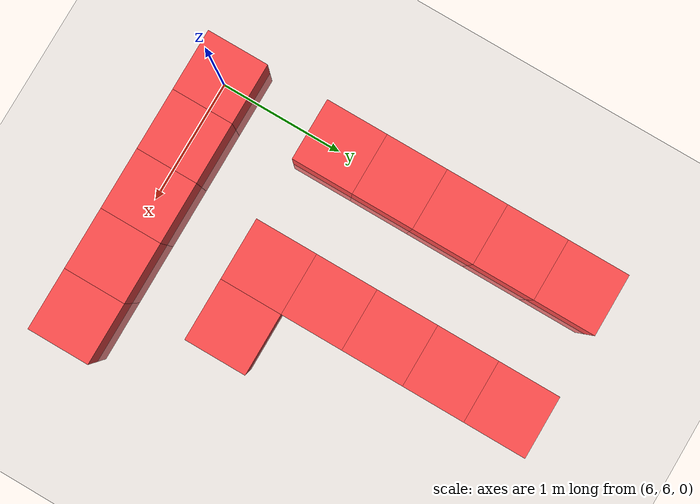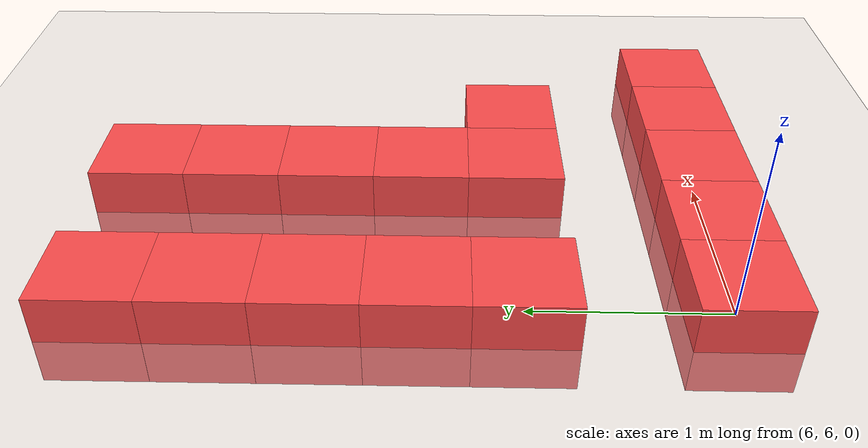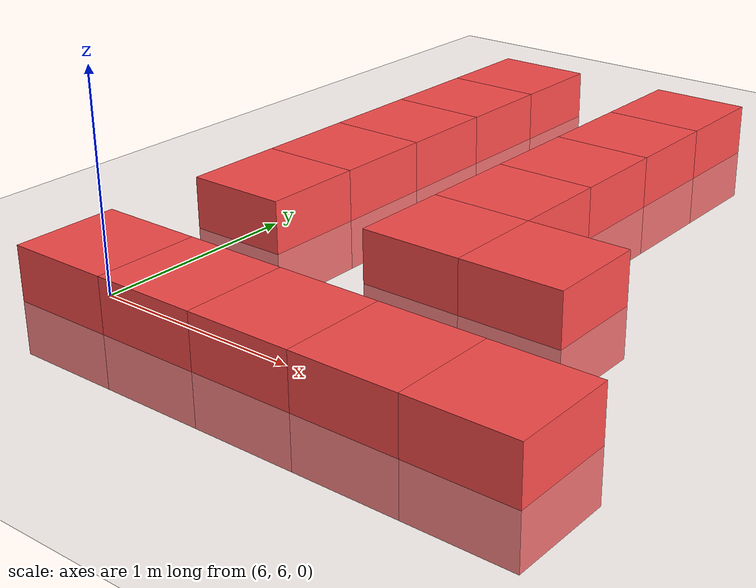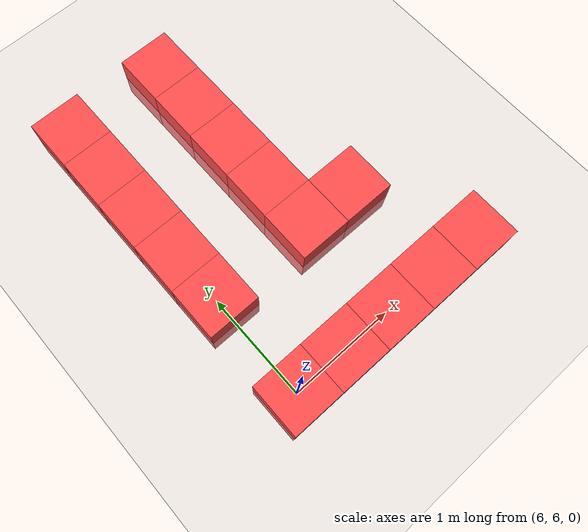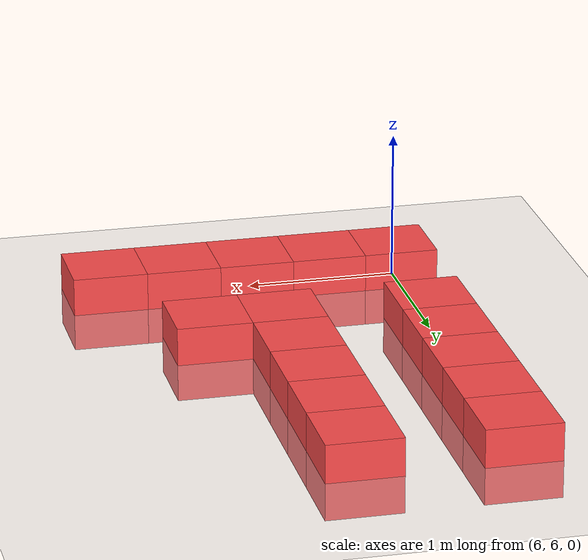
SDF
<sdf version="1.6">
 <world name="default">
  <model name="ground_plane">
   <static>1</static>
   <link name="link">
    <collision name="collision">
     <geometry><plane><normal>0 0 1</normal><size>100 100</size></plane></geometry>
     <surface><friction><ode><mu>100</mu><mu2>50</mu2></ode></friction></surface>
    </collision>
    <visual name="visual">
     <cast_shadows>0</cast_shadows>
     <geometry><plane><normal>0 0 1</normal><size>100 100</size></plane></geometry>
     <material>
      <script><uri>file://media/materials/scripts/gazebo.material</uri><name>Gazebo/Grey</name></script>
     </material>
    </visual>
   </link>
  </model>
  <model name="Box_Red_312">
   <link name="link_0">
    <inertial>
     <mass>1</mass>
     <inertia>
      <ixx>0.166667</ixx>
      <ixy>0</ixy>
      <ixz>0</ixz>
      <iyy>0.166667</iyy>
      <iyz>0</iyz>
      <izz>0.166667</izz>
     </inertia>
    </inertial>
    <visual name="visual">
     <geometry><box><size>0.5 0.5 0.5</size></box></geometry>
     <material>
      <lighting>1</lighting>
      <script><uri>file://media/materials/scripts/gazebo.material</uri><name>Gazebo/Grey</name></script>
      <ambient>1 0.3 0.3 1</ambient>
      <diffuse>0.7 0.7 0.7 1</diffuse>
      <specular>0.01 0.01 0.01 1</specular>
      <emissive>0 0 0 1</emissive>
      <shader type="vertex"><normal_map>__default__</normal_map></shader>
     </material>
    </visual>
    <collision name="collision">
     <geometry><box><size>0.5 0.5 0.5</size></box></geometry>
     <surface>
      <friction>
       <ode><mu>1</mu><mu2>1</mu2><fdir1>0 0 0</fdir1><slip1>0</slip1><slip2>0</slip2></ode>
       <torsional>
        <coefficient>1</coefficient>
        <patch_radius>0</patch_radius>
        <surface_radius>0</surface_radius>
        <use_patch_radius>1</use_patch_radius>
        <ode><slip>0</slip></ode>
       </torsional>
      </friction>
      <bounce><restitution_coefficient>0</restitution_coefficient><threshold>1e+06</threshold></bounce>
      <contact>
       <collide_without_contact>0</collide_without_contact>
       <collide_without_contact_bitmask>1</collide_without_contact_bitmask>
       <collide_bitmask>1</collide_bitmask>
       <ode>
        <soft_cfm>0</soft_cfm>
        <soft_erp>0.2</soft_erp>
        <kp>1e+13</kp>
        <kd>1</kd>
        <max_vel>0.01</max_vel>
        <min_depth>0</min_depth>
       </ode>
       <bullet>
        <split_impulse>1</split_impulse>
        <split_impulse_penetration_threshold>-0.01</split_impulse_penetration_threshold>
        <soft_cfm>0</soft_cfm>
        <soft_erp>0.2</soft_erp>
        <kp>1e+13</kp>
        <kd>1</kd>
       </bullet>
      </contact>
     </surface>
    </collision>
   </link>
   <static>0</static>
   <pose>6.000 6.000 0.000 0 0 0</pose>
  </model>
  <model name="Box_Red_314">
   <link name="link_0">
    <inertial>
     <mass>1</mass>
     <inertia>
      <ixx>0.166667</ixx>
      <ixy>0</ixy>
      <ixz>0</ixz>
      <iyy>0.166667</iyy>
      <iyz>0</iyz>
      <izz>0.166667</izz>
     </inertia>
    </inertial>
    <visual name="visual">
     <geometry><box><size>0.5 0.5 0.5</size></box></geometry>
     <material>
      <lighting>1</lighting>
      <script><uri>file://media/materials/scripts/gazebo.material</uri><name>Gazebo/Grey</name></script>
      <ambient>1 0.3 0.3 1</ambient>
      <diffuse>0.7 0.7 0.7 1</diffuse>
      <specular>0.01 0.01 0.01 1</specular>
      <emissive>0 0 0 1</emissive>
      <shader type="vertex"><normal_map>__default__</normal_map></shader>
     </material>
    </visual>
    <collision name="collision">
     <geometry><box><size>0.5 0.5 0.5</size></box></geometry>
     <surface>
      <friction>
       <ode><mu>1</mu><mu2>1</mu2><fdir1>0 0 0</fdir1><slip1>0</slip1><slip2>0</slip2></ode>
       <torsional>
        <coefficient>1</coefficient>
        <patch_radius>0</patch_radius>
        <surface_radius>0</surface_radius>
        <use_patch_radius>1</use_patch_radius>
        <ode><slip>0</slip></ode>
       </torsional>
      </friction>
      <bounce><restitution_coefficient>0</restitution_coefficient><threshold>1e+06</threshold></bounce>
      <contact>
       <collide_without_contact>0</collide_without_contact>
       <collide_without_contact_bitmask>1</collide_without_contact_bitmask>
       <collide_bitmask>1</collide_bitmask>
       <ode>
        <soft_cfm>0</soft_cfm>
        <soft_erp>0.2</soft_erp>
        <kp>1e+13</kp>
        <kd>1</kd>
        <max_vel>0.01</max_vel>
        <min_depth>0</min_depth>
       </ode>
       <bullet>
        <split_impulse>1</split_impulse>
        <split_impulse_penetration_threshold>-0.01</split_impulse_penetration_threshold>
        <soft_cfm>0</soft_cfm>
        <soft_erp>0.2</soft_erp>
        <kp>1e+13</kp>
        <kd>1</kd>
       </bullet>
      </contact>
     </surface>
    </collision>
   </link>
   <static>0</static>
   <pose>6.000 7.000 0.000 0 0 0</pose>
  </model>
  <model name="Box_Red_315">
   <link name="link_0">
    <inertial>
     <mass>1</mass>
     <inertia>
      <ixx>0.166667</ixx>
      <ixy>0</ixy>
      <ixz>0</ixz>
      <iyy>0.166667</iyy>
      <iyz>0</iyz>
      <izz>0.166667</izz>
     </inertia>
    </inertial>
    <visual name="visual">
     <geometry><box><size>0.5 0.5 0.5</size></box></geometry>
     <material>
      <lighting>1</lighting>
      <script><uri>file://media/materials/scripts/gazebo.material</uri><name>Gazebo/Grey</name></script>
      <ambient>1 0.3 0.3 1</ambient>
      <diffuse>0.7 0.7 0.7 1</diffuse>
      <specular>0.01 0.01 0.01 1</specular>
      <emissive>0 0 0 1</emissive>
      <shader type="vertex"><normal_map>__default__</normal_map></shader>
     </material>
    </visual>
    <collision name="collision">
     <geometry><box><size>0.5 0.5 0.5</size></box></geometry>
     <surface>
      <friction>
       <ode><mu>1</mu><mu2>1</mu2><fdir1>0 0 0</fdir1><slip1>0</slip1><slip2>0</slip2></ode>
       <torsional>
        <coefficient>1</coefficient>
        <patch_radius>0</patch_radius>
        <surface_radius>0</surface_radius>
        <use_patch_radius>1</use_patch_radius>
        <ode><slip>0</slip></ode>
       </torsional>
      </friction>
      <bounce><restitution_coefficient>0</restitution_coefficient><threshold>1e+06</threshold></bounce>
      <contact>
       <collide_without_contact>0</collide_without_contact>
       <collide_without_contact_bitmask>1</collide_without_contact_bitmask>
       <collide_bitmask>1</collide_bitmask>
       <ode>
        <soft_cfm>0</soft_cfm>
        <soft_erp>0.2</soft_erp>
        <kp>1e+13</kp>
        <kd>1</kd>
        <max_vel>0.01</max_vel>
        <min_depth>0</min_depth>
       </ode>
       <bullet>
        <split_impulse>1</split_impulse>
        <split_impulse_penetration_threshold>-0.01</split_impulse_penetration_threshold>
        <soft_cfm>0</soft_cfm>
        <soft_erp>0.2</soft_erp>
        <kp>1e+13</kp>
        <kd>1</kd>
       </bullet>
      </contact>
     </surface>
    </collision>
   </link>
   <static>0</static>
   <pose>6.000 7.500 0.000 0 0 0</pose>
  </model>
  <model name="Box_Red_316">
   <link name="link_0">
    <inertial>
     <mass>1</mass>
     <inertia>
      <ixx>0.166667</ixx>
      <ixy>0</ixy>
      <ixz>0</ixz>
      <iyy>0.166667</iyy>
      <iyz>0</iyz>
      <izz>0.166667</izz>
     </inertia>
    </inertial>
    <visual name="visual">
     <geometry><box><size>0.5 0.5 0.5</size></box></geometry>
     <material>
      <lighting>1</lighting>
      <script><uri>file://media/materials/scripts/gazebo.material</uri><name>Gazebo/Grey</name></script>
      <ambient>1 0.3 0.3 1</ambient>
      <diffuse>0.7 0.7 0.7 1</diffuse>
      <specular>0.01 0.01 0.01 1</specular>
      <emissive>0 0 0 1</emissive>
      <shader type="vertex"><normal_map>__default__</normal_map></shader>
     </material>
    </visual>
    <collision name="collision">
     <geometry><box><size>0.5 0.5 0.5</size></box></geometry>
     <surface>
      <friction>
       <ode><mu>1</mu><mu2>1</mu2><fdir1>0 0 0</fdir1><slip1>0</slip1><slip2>0</slip2></ode>
       <torsional>
        <coefficient>1</coefficient>
        <patch_radius>0</patch_radius>
        <surface_radius>0</surface_radius>
        <use_patch_radius>1</use_patch_radius>
        <ode><slip>0</slip></ode>
       </torsional>
      </friction>
      <bounce><restitution_coefficient>0</restitution_coefficient><threshold>1e+06</threshold></bounce>
      <contact>
       <collide_without_contact>0</collide_without_contact>
       <collide_without_contact_bitmask>1</collide_without_contact_bitmask>
       <collide_bitmask>1</collide_bitmask>
       <ode>
        <soft_cfm>0</soft_cfm>
        <soft_erp>0.2</soft_erp>
        <kp>1e+13</kp>
        <kd>1</kd>
        <max_vel>0.01</max_vel>
        <min_depth>0</min_depth>
       </ode>
       <bullet>
        <split_impulse>1</split_impulse>
        <split_impulse_penetration_threshold>-0.01</split_impulse_penetration_threshold>
        <soft_cfm>0</soft_cfm>
        <soft_erp>0.2</soft_erp>
        <kp>1e+13</kp>
        <kd>1</kd>
       </bullet>
      </contact>
     </surface>
    </collision>
   </link>
   <static>0</static>
   <pose>6.000 8.000 0.000 0 0 0</pose>
  </model>
  <model name="Box_Red_317">
   <link name="link_0">
    <inertial>
     <mass>1</mass>
     <inertia>
      <ixx>0.166667</ixx>
      <ixy>0</ixy>
      <ixz>0</ixz>
      <iyy>0.166667</iyy>
      <iyz>0</iyz>
      <izz>0.166667</izz>
     </inertia>
    </inertial>
    <visual name="visual">
     <geometry><box><size>0.5 0.5 0.5</size></box></geometry>
     <material>
      <lighting>1</lighting>
      <script><uri>file://media/materials/scripts/gazebo.material</uri><name>Gazebo/Grey</name></script>
      <ambient>1 0.3 0.3 1</ambient>
      <diffuse>0.7 0.7 0.7 1</diffuse>
      <specular>0.01 0.01 0.01 1</specular>
      <emissive>0 0 0 1</emissive>
      <shader type="vertex"><normal_map>__default__</normal_map></shader>
     </material>
    </visual>
    <collision name="collision">
     <geometry><box><size>0.5 0.5 0.5</size></box></geometry>
     <surface>
      <friction>
       <ode><mu>1</mu><mu2>1</mu2><fdir1>0 0 0</fdir1><slip1>0</slip1><slip2>0</slip2></ode>
       <torsional>
        <coefficient>1</coefficient>
        <patch_radius>0</patch_radius>
        <surface_radius>0</surface_radius>
        <use_patch_radius>1</use_patch_radius>
        <ode><slip>0</slip></ode>
       </torsional>
      </friction>
      <bounce><restitution_coefficient>0</restitution_coefficient><threshold>1e+06</threshold></bounce>
      <contact>
       <collide_without_contact>0</collide_without_contact>
       <collide_without_contact_bitmask>1</collide_without_contact_bitmask>
       <collide_bitmask>1</collide_bitmask>
       <ode>
        <soft_cfm>0</soft_cfm>
        <soft_erp>0.2</soft_erp>
        <kp>1e+13</kp>
        <kd>1</kd>
        <max_vel>0.01</max_vel>
        <min_depth>0</min_depth>
       </ode>
       <bullet>
        <split_impulse>1</split_impulse>
        <split_impulse_penetration_threshold>-0.01</split_impulse_penetration_threshold>
        <soft_cfm>0</soft_cfm>
        <soft_erp>0.2</soft_erp>
        <kp>1e+13</kp>
        <kd>1</kd>
       </bullet>
      </contact>
     </surface>
    </collision>
   </link>
   <static>0</static>
   <pose>6.000 8.500 0.000 0 0 0</pose>
  </model>
  <model name="Box_Red_318">
   <link name="link_0">
    <inertial>
     <mass>1</mass>
     <inertia>
      <ixx>0.166667</ixx>
      <ixy>0</ixy>
      <ixz>0</ixz>
      <iyy>0.166667</iyy>
      <iyz>0</iyz>
      <izz>0.166667</izz>
     </inertia>
    </inertial>
    <visual name="visual">
     <geometry><box><size>0.5 0.5 0.5</size></box></geometry>
     <material>
      <lighting>1</lighting>
      <script><uri>file://media/materials/scripts/gazebo.material</uri><name>Gazebo/Grey</name></script>
      <ambient>1 0.3 0.3 1</ambient>
      <diffuse>0.7 0.7 0.7 1</diffuse>
      <specular>0.01 0.01 0.01 1</specular>
      <emissive>0 0 0 1</emissive>
      <shader type="vertex"><normal_map>__default__</normal_map></shader>
     </material>
    </visual>
    <collision name="collision">
     <geometry><box><size>0.5 0.5 0.5</size></box></geometry>
     <surface>
      <friction>
       <ode><mu>1</mu><mu2>1</mu2><fdir1>0 0 0</fdir1><slip1>0</slip1><slip2>0</slip2></ode>
       <torsional>
        <coefficient>1</coefficient>
        <patch_radius>0</patch_radius>
        <surface_radius>0</surface_radius>
        <use_patch_radius>1</use_patch_radius>
        <ode><slip>0</slip></ode>
       </torsional>
      </friction>
      <bounce><restitution_coefficient>0</restitution_coefficient><threshold>1e+06</threshold></bounce>
      <contact>
       <collide_without_contact>0</collide_without_contact>
       <collide_without_contact_bitmask>1</collide_without_contact_bitmask>
       <collide_bitmask>1</collide_bitmask>
       <ode>
        <soft_cfm>0</soft_cfm>
        <soft_erp>0.2</soft_erp>
        <kp>1e+13</kp>
        <kd>1</kd>
        <max_vel>0.01</max_vel>
        <min_depth>0</min_depth>
       </ode>
       <bullet>
        <split_impulse>1</split_impulse>
        <split_impulse_penetration_threshold>-0.01</split_impulse_penetration_threshold>
        <soft_cfm>0</soft_cfm>
        <soft_erp>0.2</soft_erp>
        <kp>1e+13</kp>
        <kd>1</kd>
       </bullet>
      </contact>
     </surface>
    </collision>
   </link>
   <static>0</static>
   <pose>6.000 9.000 0.000 0 0 0</pose>
  </model>
  <model name="Box_Red_337">
   <link name="link_0">
    <inertial>
     <mass>1</mass>
     <inertia>
      <ixx>0.166667</ixx>
      <ixy>0</ixy>
      <ixz>0</ixz>
      <iyy>0.166667</iyy>
      <iyz>0</iyz>
      <izz>0.166667</izz>
     </inertia>
    </inertial>
    <visual name="visual">
     <geometry><box><size>0.5 0.5 0.5</size></box></geometry>
     <material>
      <lighting>1</lighting>
      <script><uri>file://media/materials/scripts/gazebo.material</uri><name>Gazebo/Grey</name></script>
      <ambient>1 0.3 0.3 1</ambient>
      <diffuse>0.7 0.7 0.7 1</diffuse>
      <specular>0.01 0.01 0.01 1</specular>
      <emissive>0 0 0 1</emissive>
      <shader type="vertex"><normal_map>__default__</normal_map></shader>
     </material>
    </visual>
    <collision name="collision">
     <geometry><box><size>0.5 0.5 0.5</size></box></geometry>
     <surface>
      <friction>
       <ode><mu>1</mu><mu2>1</mu2><fdir1>0 0 0</fdir1><slip1>0</slip1><slip2>0</slip2></ode>
       <torsional>
        <coefficient>1</coefficient>
        <patch_radius>0</patch_radius>
        <surface_radius>0</surface_radius>
        <use_patch_radius>1</use_patch_radius>
        <ode><slip>0</slip></ode>
       </torsional>
      </friction>
      <bounce><restitution_coefficient>0</restitution_coefficient><threshold>1e+06</threshold></bounce>
      <contact>
       <collide_without_contact>0</collide_without_contact>
       <collide_without_contact_bitmask>1</collide_without_contact_bitmask>
       <collide_bitmask>1</collide_bitmask>
       <ode>
        <soft_cfm>0</soft_cfm>
        <soft_erp>0.2</soft_erp>
        <kp>1e+13</kp>
        <kd>1</kd>
        <max_vel>0.01</max_vel>
        <min_depth>0</min_depth>
       </ode>
       <bullet>
        <split_impulse>1</split_impulse>
        <split_impulse_penetration_threshold>-0.01</split_impulse_penetration_threshold>
        <soft_cfm>0</soft_cfm>
        <soft_erp>0.2</soft_erp>
        <kp>1e+13</kp>
        <kd>1</kd>
       </bullet>
      </contact>
     </surface>
    </collision>
   </link>
   <static>0</static>
   <pose>6.500 6.000 0.000 0 0 0</pose>
  </model>
  <model name="Box_Red_362">
   <link name="link_0">
    <inertial>
     <mass>1</mass>
     <inertia>
      <ixx>0.166667</ixx>
      <ixy>0</ixy>
      <ixz>0</ixz>
      <iyy>0.166667</iyy>
      <iyz>0</iyz>
      <izz>0.166667</izz>
     </inertia>
    </inertial>
    <visual name="visual">
     <geometry><box><size>0.5 0.5 0.5</size></box></geometry>
     <material>
      <lighting>1</lighting>
      <script><uri>file://media/materials/scripts/gazebo.material</uri><name>Gazebo/Grey</name></script>
      <ambient>1 0.3 0.3 1</ambient>
      <diffuse>0.7 0.7 0.7 1</diffuse>
      <specular>0.01 0.01 0.01 1</specular>
      <emissive>0 0 0 1</emissive>
      <shader type="vertex"><normal_map>__default__</normal_map></shader>
     </material>
    </visual>
    <collision name="collision">
     <geometry><box><size>0.5 0.5 0.5</size></box></geometry>
     <surface>
      <friction>
       <ode><mu>1</mu><mu2>1</mu2><fdir1>0 0 0</fdir1><slip1>0</slip1><slip2>0</slip2></ode>
       <torsional>
        <coefficient>1</coefficient>
        <patch_radius>0</patch_radius>
        <surface_radius>0</surface_radius>
        <use_patch_radius>1</use_patch_radius>
        <ode><slip>0</slip></ode>
       </torsional>
      </friction>
      <bounce><restitution_coefficient>0</restitution_coefficient><threshold>1e+06</threshold></bounce>
      <contact>
       <collide_without_contact>0</collide_without_contact>
       <collide_without_contact_bitmask>1</collide_without_contact_bitmask>
       <collide_bitmask>1</collide_bitmask>
       <ode>
        <soft_cfm>0</soft_cfm>
        <soft_erp>0.2</soft_erp>
        <kp>1e+13</kp>
        <kd>1</kd>
        <max_vel>0.01</max_vel>
        <min_depth>0</min_depth>
       </ode>
       <bullet>
        <split_impulse>1</split_impulse>
        <split_impulse_penetration_threshold>-0.01</split_impulse_penetration_threshold>
        <soft_cfm>0</soft_cfm>
        <soft_erp>0.2</soft_erp>
        <kp>1e+13</kp>
        <kd>1</kd>
       </bullet>
      </contact>
     </surface>
    </collision>
   </link>
   <static>0</static>
   <pose>7.000 6.000 0.000 0 0 0</pose>
  </model>
  <model name="Box_Red_364">
   <link name="link_0">
    <inertial>
     <mass>1</mass>
     <inertia>
      <ixx>0.166667</ixx>
      <ixy>0</ixy>
      <ixz>0</ixz>
      <iyy>0.166667</iyy>
      <iyz>0</iyz>
      <izz>0.166667</izz>
     </inertia>
    </inertial>
    <visual name="visual">
     <geometry><box><size>0.5 0.5 0.5</size></box></geometry>
     <material>
      <lighting>1</lighting>
      <script><uri>file://media/materials/scripts/gazebo.material</uri><name>Gazebo/Grey</name></script>
      <ambient>1 0.3 0.3 1</ambient>
      <diffuse>0.7 0.7 0.7 1</diffuse>
      <specular>0.01 0.01 0.01 1</specular>
      <emissive>0 0 0 1</emissive>
      <shader type="vertex"><normal_map>__default__</normal_map></shader>
     </material>
    </visual>
    <collision name="collision">
     <geometry><box><size>0.5 0.5 0.5</size></box></geometry>
     <surface>
      <friction>
       <ode><mu>1</mu><mu2>1</mu2><fdir1>0 0 0</fdir1><slip1>0</slip1><slip2>0</slip2></ode>
       <torsional>
        <coefficient>1</coefficient>
        <patch_radius>0</patch_radius>
        <surface_radius>0</surface_radius>
        <use_patch_radius>1</use_patch_radius>
        <ode><slip>0</slip></ode>
       </torsional>
      </friction>
      <bounce><restitution_coefficient>0</restitution_coefficient><threshold>1e+06</threshold></bounce>
      <contact>
       <collide_without_contact>0</collide_without_contact>
       <collide_without_contact_bitmask>1</collide_without_contact_bitmask>
       <collide_bitmask>1</collide_bitmask>
       <ode>
        <soft_cfm>0</soft_cfm>
        <soft_erp>0.2</soft_erp>
        <kp>1e+13</kp>
        <kd>1</kd>
        <max_vel>0.01</max_vel>
        <min_depth>0</min_depth>
       </ode>
       <bullet>
        <split_impulse>1</split_impulse>
        <split_impulse_penetration_threshold>-0.01</split_impulse_penetration_threshold>
        <soft_cfm>0</soft_cfm>
        <soft_erp>0.2</soft_erp>
        <kp>1e+13</kp>
        <kd>1</kd>
       </bullet>
      </contact>
     </surface>
    </collision>
   </link>
   <static>0</static>
   <pose>7.000 7.000 0.000 0 0 0</pose>
  </model>
  <model name="Box_Red_365">
   <link name="link_0">
    <inertial>
     <mass>1</mass>
     <inertia>
      <ixx>0.166667</ixx>
      <ixy>0</ixy>
      <ixz>0</ixz>
      <iyy>0.166667</iyy>
      <iyz>0</iyz>
      <izz>0.166667</izz>
     </inertia>
    </inertial>
    <visual name="visual">
     <geometry><box><size>0.5 0.5 0.5</size></box></geometry>
     <material>
      <lighting>1</lighting>
      <script><uri>file://media/materials/scripts/gazebo.material</uri><name>Gazebo/Grey</name></script>
      <ambient>1 0.3 0.3 1</ambient>
      <diffuse>0.7 0.7 0.7 1</diffuse>
      <specular>0.01 0.01 0.01 1</specular>
      <emissive>0 0 0 1</emissive>
      <shader type="vertex"><normal_map>__default__</normal_map></shader>
     </material>
    </visual>
    <collision name="collision">
     <geometry><box><size>0.5 0.5 0.5</size></box></geometry>
     <surface>
      <friction>
       <ode><mu>1</mu><mu2>1</mu2><fdir1>0 0 0</fdir1><slip1>0</slip1><slip2>0</slip2></ode>
       <torsional>
        <coefficient>1</coefficient>
        <patch_radius>0</patch_radius>
        <surface_radius>0</surface_radius>
        <use_patch_radius>1</use_patch_radius>
        <ode><slip>0</slip></ode>
       </torsional>
      </friction>
      <bounce><restitution_coefficient>0</restitution_coefficient><threshold>1e+06</threshold></bounce>
      <contact>
       <collide_without_contact>0</collide_without_contact>
       <collide_without_contact_bitmask>1</collide_without_contact_bitmask>
       <collide_bitmask>1</collide_bitmask>
       <ode>
        <soft_cfm>0</soft_cfm>
        <soft_erp>0.2</soft_erp>
        <kp>1e+13</kp>
        <kd>1</kd>
        <max_vel>0.01</max_vel>
        <min_depth>0</min_depth>
       </ode>
       <bullet>
        <split_impulse>1</split_impulse>
        <split_impulse_penetration_threshold>-0.01</split_impulse_penetration_threshold>
        <soft_cfm>0</soft_cfm>
        <soft_erp>0.2</soft_erp>
        <kp>1e+13</kp>
        <kd>1</kd>
       </bullet>
      </contact>
     </surface>
    </collision>
   </link>
   <static>0</static>
   <pose>7.000 7.500 0.000 0 0 0</pose>
  </model>
  <model name="Box_Red_366">
   <link name="link_0">
    <inertial>
     <mass>1</mass>
     <inertia>
      <ixx>0.166667</ixx>
      <ixy>0</ixy>
      <ixz>0</ixz>
      <iyy>0.166667</iyy>
      <iyz>0</iyz>
      <izz>0.166667</izz>
     </inertia>
    </inertial>
    <visual name="visual">
     <geometry><box><size>0.5 0.5 0.5</size></box></geometry>
     <material>
      <lighting>1</lighting>
      <script><uri>file://media/materials/scripts/gazebo.material</uri><name>Gazebo/Grey</name></script>
      <ambient>1 0.3 0.3 1</ambient>
      <diffuse>0.7 0.7 0.7 1</diffuse>
      <specular>0.01 0.01 0.01 1</specular>
      <emissive>0 0 0 1</emissive>
      <shader type="vertex"><normal_map>__default__</normal_map></shader>
     </material>
    </visual>
    <collision name="collision">
     <geometry><box><size>0.5 0.5 0.5</size></box></geometry>
     <surface>
      <friction>
       <ode><mu>1</mu><mu2>1</mu2><fdir1>0 0 0</fdir1><slip1>0</slip1><slip2>0</slip2></ode>
       <torsional>
        <coefficient>1</coefficient>
        <patch_radius>0</patch_radius>
        <surface_radius>0</surface_radius>
        <use_patch_radius>1</use_patch_radius>
        <ode><slip>0</slip></ode>
       </torsional>
      </friction>
      <bounce><restitution_coefficient>0</restitution_coefficient><threshold>1e+06</threshold></bounce>
      <contact>
       <collide_without_contact>0</collide_without_contact>
       <collide_without_contact_bitmask>1</collide_without_contact_bitmask>
       <collide_bitmask>1</collide_bitmask>
       <ode>
        <soft_cfm>0</soft_cfm>
        <soft_erp>0.2</soft_erp>
        <kp>1e+13</kp>
        <kd>1</kd>
        <max_vel>0.01</max_vel>
        <min_depth>0</min_depth>
       </ode>
       <bullet>
        <split_impulse>1</split_impulse>
        <split_impulse_penetration_threshold>-0.01</split_impulse_penetration_threshold>
        <soft_cfm>0</soft_cfm>
        <soft_erp>0.2</soft_erp>
        <kp>1e+13</kp>
        <kd>1</kd>
       </bullet>
      </contact>
     </surface>
    </collision>
   </link>
   <static>0</static>
   <pose>7.000 8.000 0.000 0 0 0</pose>
  </model>
  <model name="Box_Red_367">
   <link name="link_0">
    <inertial>
     <mass>1</mass>
     <inertia>
      <ixx>0.166667</ixx>
      <ixy>0</ixy>
      <ixz>0</ixz>
      <iyy>0.166667</iyy>
      <iyz>0</iyz>
      <izz>0.166667</izz>
     </inertia>
    </inertial>
    <visual name="visual">
     <geometry><box><size>0.5 0.5 0.5</size></box></geometry>
     <material>
      <lighting>1</lighting>
      <script><uri>file://media/materials/scripts/gazebo.material</uri><name>Gazebo/Grey</name></script>
      <ambient>1 0.3 0.3 1</ambient>
      <diffuse>0.7 0.7 0.7 1</diffuse>
      <specular>0.01 0.01 0.01 1</specular>
      <emissive>0 0 0 1</emissive>
      <shader type="vertex"><normal_map>__default__</normal_map></shader>
     </material>
    </visual>
    <collision name="collision">
     <geometry><box><size>0.5 0.5 0.5</size></box></geometry>
     <surface>
      <friction>
       <ode><mu>1</mu><mu2>1</mu2><fdir1>0 0 0</fdir1><slip1>0</slip1><slip2>0</slip2></ode>
       <torsional>
        <coefficient>1</coefficient>
        <patch_radius>0</patch_radius>
        <surface_radius>0</surface_radius>
        <use_patch_radius>1</use_patch_radius>
        <ode><slip>0</slip></ode>
       </torsional>
      </friction>
      <bounce><restitution_coefficient>0</restitution_coefficient><threshold>1e+06</threshold></bounce>
      <contact>
       <collide_without_contact>0</collide_without_contact>
       <collide_without_contact_bitmask>1</collide_without_contact_bitmask>
       <collide_bitmask>1</collide_bitmask>
       <ode>
        <soft_cfm>0</soft_cfm>
        <soft_erp>0.2</soft_erp>
        <kp>1e+13</kp>
        <kd>1</kd>
        <max_vel>0.01</max_vel>
        <min_depth>0</min_depth>
       </ode>
       <bullet>
        <split_impulse>1</split_impulse>
        <split_impulse_penetration_threshold>-0.01</split_impulse_penetration_threshold>
        <soft_cfm>0</soft_cfm>
        <soft_erp>0.2</soft_erp>
        <kp>1e+13</kp>
        <kd>1</kd>
       </bullet>
      </contact>
     </surface>
    </collision>
   </link>
   <static>0</static>
   <pose>7.000 8.500 0.000 0 0 0</pose>
  </model>
  <model name="Box_Red_368">
   <link name="link_0">
    <inertial>
     <mass>1</mass>
     <inertia>
      <ixx>0.166667</ixx>
      <ixy>0</ixy>
      <ixz>0</ixz>
      <iyy>0.166667</iyy>
      <iyz>0</iyz>
      <izz>0.166667</izz>
     </inertia>
    </inertial>
    <visual name="visual">
     <geometry><box><size>0.5 0.5 0.5</size></box></geometry>
     <material>
      <lighting>1</lighting>
      <script><uri>file://media/materials/scripts/gazebo.material</uri><name>Gazebo/Grey</name></script>
      <ambient>1 0.3 0.3 1</ambient>
      <diffuse>0.7 0.7 0.7 1</diffuse>
      <specular>0.01 0.01 0.01 1</specular>
      <emissive>0 0 0 1</emissive>
      <shader type="vertex"><normal_map>__default__</normal_map></shader>
     </material>
    </visual>
    <collision name="collision">
     <geometry><box><size>0.5 0.5 0.5</size></box></geometry>
     <surface>
      <friction>
       <ode><mu>1</mu><mu2>1</mu2><fdir1>0 0 0</fdir1><slip1>0</slip1><slip2>0</slip2></ode>
       <torsional>
        <coefficient>1</coefficient>
        <patch_radius>0</patch_radius>
        <surface_radius>0</surface_radius>
        <use_patch_radius>1</use_patch_radius>
        <ode><slip>0</slip></ode>
       </torsional>
      </friction>
      <bounce><restitution_coefficient>0</restitution_coefficient><threshold>1e+06</threshold></bounce>
      <contact>
       <collide_without_contact>0</collide_without_contact>
       <collide_without_contact_bitmask>1</collide_without_contact_bitmask>
       <collide_bitmask>1</collide_bitmask>
       <ode>
        <soft_cfm>0</soft_cfm>
        <soft_erp>0.2</soft_erp>
        <kp>1e+13</kp>
        <kd>1</kd>
        <max_vel>0.01</max_vel>
        <min_depth>0</min_depth>
       </ode>
       <bullet>
        <split_impulse>1</split_impulse>
        <split_impulse_penetration_threshold>-0.01</split_impulse_penetration_threshold>
        <soft_cfm>0</soft_cfm>
        <soft_erp>0.2</soft_erp>
        <kp>1e+13</kp>
        <kd>1</kd>
       </bullet>
      </contact>
     </surface>
    </collision>
   </link>
   <static>0</static>
   <pose>7.000 9.000 0.000 0 0 0</pose>
  </model>
  <model name="Box_Red_387">
   <link name="link_0">
    <inertial>
     <mass>1</mass>
     <inertia>
      <ixx>0.166667</ixx>
      <ixy>0</ixy>
      <ixz>0</ixz>
      <iyy>0.166667</iyy>
      <iyz>0</iyz>
      <izz>0.166667</izz>
     </inertia>
    </inertial>
    <visual name="visual">
     <geometry><box><size>0.5 0.5 0.5</size></box></geometry>
     <material>
      <lighting>1</lighting>
      <script><uri>file://media/materials/scripts/gazebo.material</uri><name>Gazebo/Grey</name></script>
      <ambient>1 0.3 0.3 1</ambient>
      <diffuse>0.7 0.7 0.7 1</diffuse>
      <specular>0.01 0.01 0.01 1</specular>
      <emissive>0 0 0 1</emissive>
      <shader type="vertex"><normal_map>__default__</normal_map></shader>
     </material>
    </visual>
    <collision name="collision">
     <geometry><box><size>0.5 0.5 0.5</size></box></geometry>
     <surface>
      <friction>
       <ode><mu>1</mu><mu2>1</mu2><fdir1>0 0 0</fdir1><slip1>0</slip1><slip2>0</slip2></ode>
       <torsional>
        <coefficient>1</coefficient>
        <patch_radius>0</patch_radius>
        <surface_radius>0</surface_radius>
        <use_patch_radius>1</use_patch_radius>
        <ode><slip>0</slip></ode>
       </torsional>
      </friction>
      <bounce><restitution_coefficient>0</restitution_coefficient><threshold>1e+06</threshold></bounce>
      <contact>
       <collide_without_contact>0</collide_without_contact>
       <collide_without_contact_bitmask>1</collide_without_contact_bitmask>
       <collide_bitmask>1</collide_bitmask>
       <ode>
        <soft_cfm>0</soft_cfm>
        <soft_erp>0.2</soft_erp>
        <kp>1e+13</kp>
        <kd>1</kd>
        <max_vel>0.01</max_vel>
        <min_depth>0</min_depth>
       </ode>
       <bullet>
        <split_impulse>1</split_impulse>
        <split_impulse_penetration_threshold>-0.01</split_impulse_penetration_threshold>
        <soft_cfm>0</soft_cfm>
        <soft_erp>0.2</soft_erp>
        <kp>1e+13</kp>
        <kd>1</kd>
       </bullet>
      </contact>
     </surface>
    </collision>
   </link>
   <static>0</static>
   <pose>7.500 6.000 0.000 0 0 0</pose>
  </model>
  <model name="Box_Red_389">
   <link name="link_0">
    <inertial>
     <mass>1</mass>
     <inertia>
      <ixx>0.166667</ixx>
      <ixy>0</ixy>
      <ixz>0</ixz>
      <iyy>0.166667</iyy>
      <iyz>0</iyz>
      <izz>0.166667</izz>
     </inertia>
    </inertial>
    <visual name="visual">
     <geometry><box><size>0.5 0.5 0.5</size></box></geometry>
     <material>
      <lighting>1</lighting>
      <script><uri>file://media/materials/scripts/gazebo.material</uri><name>Gazebo/Grey</name></script>
      <ambient>1 0.3 0.3 1</ambient>
      <diffuse>0.7 0.7 0.7 1</diffuse>
      <specular>0.01 0.01 0.01 1</specular>
      <emissive>0 0 0 1</emissive>
      <shader type="vertex"><normal_map>__default__</normal_map></shader>
     </material>
    </visual>
    <collision name="collision">
     <geometry><box><size>0.5 0.5 0.5</size></box></geometry>
     <surface>
      <friction>
       <ode><mu>1</mu><mu2>1</mu2><fdir1>0 0 0</fdir1><slip1>0</slip1><slip2>0</slip2></ode>
       <torsional>
        <coefficient>1</coefficient>
        <patch_radius>0</patch_radius>
        <surface_radius>0</surface_radius>
        <use_patch_radius>1</use_patch_radius>
        <ode><slip>0</slip></ode>
       </torsional>
      </friction>
      <bounce><restitution_coefficient>0</restitution_coefficient><threshold>1e+06</threshold></bounce>
      <contact>
       <collide_without_contact>0</collide_without_contact>
       <collide_without_contact_bitmask>1</collide_without_contact_bitmask>
       <collide_bitmask>1</collide_bitmask>
       <ode>
        <soft_cfm>0</soft_cfm>
        <soft_erp>0.2</soft_erp>
        <kp>1e+13</kp>
        <kd>1</kd>
        <max_vel>0.01</max_vel>
        <min_depth>0</min_depth>
       </ode>
       <bullet>
        <split_impulse>1</split_impulse>
        <split_impulse_penetration_threshold>-0.01</split_impulse_penetration_threshold>
        <soft_cfm>0</soft_cfm>
        <soft_erp>0.2</soft_erp>
        <kp>1e+13</kp>
        <kd>1</kd>
       </bullet>
      </contact>
     </surface>
    </collision>
   </link>
   <static>0</static>
   <pose>7.500 7.000 0.000 0 0 0</pose>
  </model>
  <model name="Box_Red_412">
   <link name="link_0">
    <inertial>
     <mass>1</mass>
     <inertia>
      <ixx>0.166667</ixx>
      <ixy>0</ixy>
      <ixz>0</ixz>
      <iyy>0.166667</iyy>
      <iyz>0</iyz>
      <izz>0.166667</izz>
     </inertia>
    </inertial>
    <visual name="visual">
     <geometry><box><size>0.5 0.5 0.5</size></box></geometry>
     <material>
      <lighting>1</lighting>
      <script><uri>file://media/materials/scripts/gazebo.material</uri><name>Gazebo/Grey</name></script>
      <ambient>1 0.3 0.3 1</ambient>
      <diffuse>0.7 0.7 0.7 1</diffuse>
      <specular>0.01 0.01 0.01 1</specular>
      <emissive>0 0 0 1</emissive>
      <shader type="vertex"><normal_map>__default__</normal_map></shader>
     </material>
    </visual>
    <collision name="collision">
     <geometry><box><size>0.5 0.5 0.5</size></box></geometry>
     <surface>
      <friction>
       <ode><mu>1</mu><mu2>1</mu2><fdir1>0 0 0</fdir1><slip1>0</slip1><slip2>0</slip2></ode>
       <torsional>
        <coefficient>1</coefficient>
        <patch_radius>0</patch_radius>
        <surface_radius>0</surface_radius>
        <use_patch_radius>1</use_patch_radius>
        <ode><slip>0</slip></ode>
       </torsional>
      </friction>
      <bounce><restitution_coefficient>0</restitution_coefficient><threshold>1e+06</threshold></bounce>
      <contact>
       <collide_without_contact>0</collide_without_contact>
       <collide_without_contact_bitmask>1</collide_without_contact_bitmask>
       <collide_bitmask>1</collide_bitmask>
       <ode>
        <soft_cfm>0</soft_cfm>
        <soft_erp>0.2</soft_erp>
        <kp>1e+13</kp>
        <kd>1</kd>
        <max_vel>0.01</max_vel>
        <min_depth>0</min_depth>
       </ode>
       <bullet>
        <split_impulse>1</split_impulse>
        <split_impulse_penetration_threshold>-0.01</split_impulse_penetration_threshold>
        <soft_cfm>0</soft_cfm>
        <soft_erp>0.2</soft_erp>
        <kp>1e+13</kp>
        <kd>1</kd>
       </bullet>
      </contact>
     </surface>
    </collision>
   </link>
   <static>0</static>
   <pose>8.000 6.000 0.000 0 0 0</pose>
  </model>
 </world>
</sdf>
